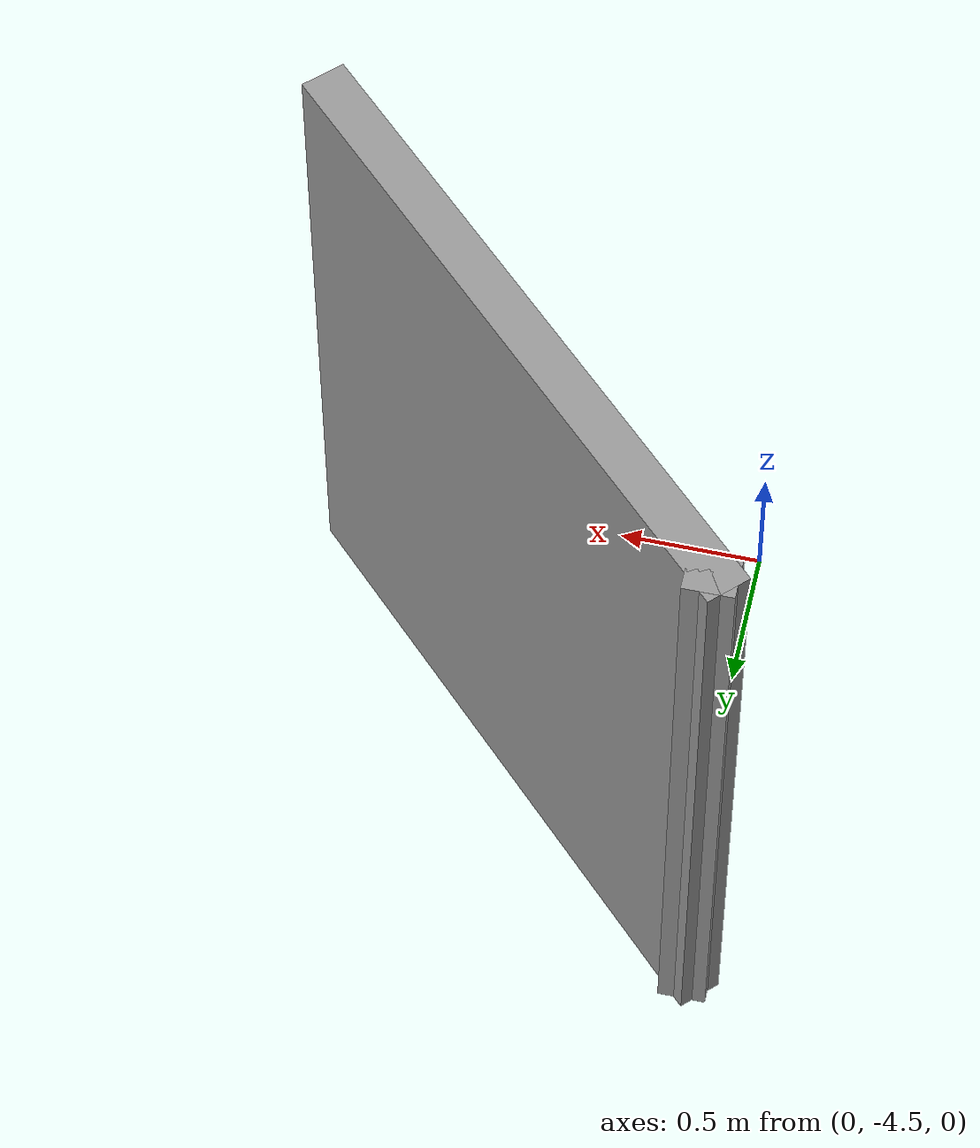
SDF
<?xml version='1.0'?>
<sdf version='1.6'>
  <model name='Untitled'>
    <pose frame=''>0.667538 -3.55754 0 0 -0 0</pose>
    <link name='Wall_0'>
      <collision name='Wall_0_Collision'>
        <geometry>
          <box>
            <size>2.25 0.15 2.5</size>
          </box>
        </geometry>
        <pose frame=''>0 0 1.25 0 -0 0</pose>
      </collision>
      <visual name='Wall_0_Visual'>
        <pose frame=''>0 0 1.25 0 -0 0</pose>
        <geometry>
          <box>
            <size>2.25 0.15 2.5</size>
          </box>
        </geometry>
        <material>
          <script>
            <uri>file://media/materials/scripts/gazebo.material</uri>
            <name>Gazebo/Grey</name>
          </script>
          <ambient>1 1 1 1</ambient>
        </material>
        <meta>
          <layer>0</layer>
        </meta>
      </visual>
      <pose frame=''>0 -0 0 0 -0 2.35619</pose>
    </link>
    <link name='Wall_1'>
      <collision name='Wall_1_Collision'>
        <geometry>
          <box>
            <size>0.16 0.15 2.5</size>
          </box>
        </geometry>
        <pose frame=''>0 0 1.25 0 -0 0</pose>
      </collision>
      <visual name='Wall_1_Visual'>
        <pose frame=''>0 0 1.25 0 -0 0</pose>
        <geometry>
          <box>
            <size>0.16 0.15 2.5</size>
          </box>
        </geometry>
        <material>
          <script>
            <uri>file://media/materials/scripts/gazebo.material</uri>
            <name>Gazebo/Grey</name>
          </script>
          <ambient>0 0 0 1</ambient>
        </material>
        <meta>
          <layer>0</layer>
        </meta>
      </visual>
      <pose frame=''>-0.737462 0.742462 0 0 -0 0</pose>
    </link>
    <static>1</static>
  </model>
</sdf>
